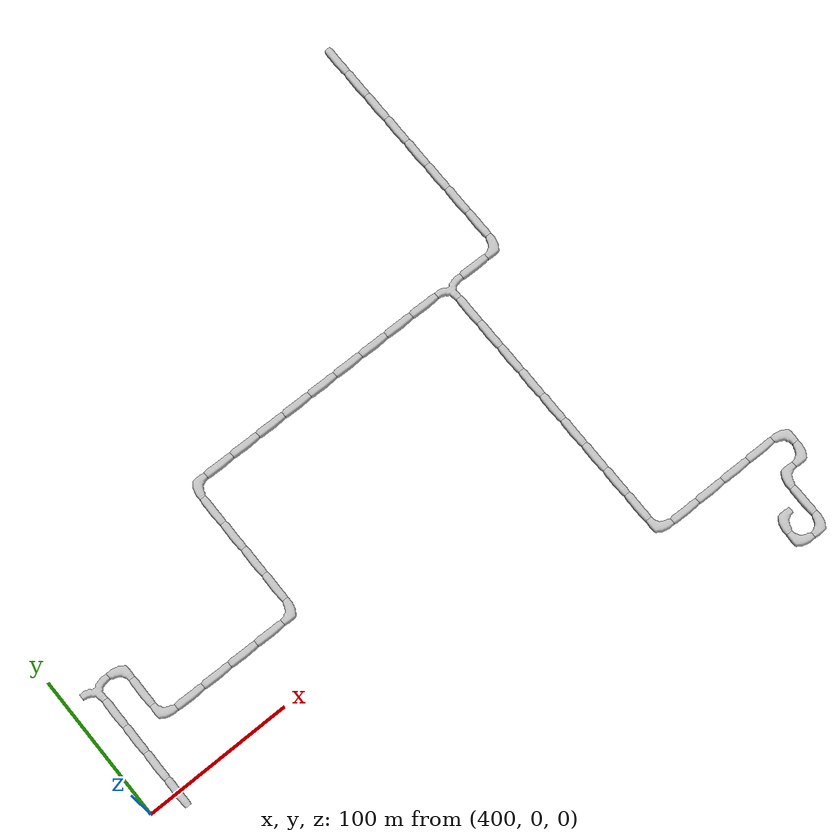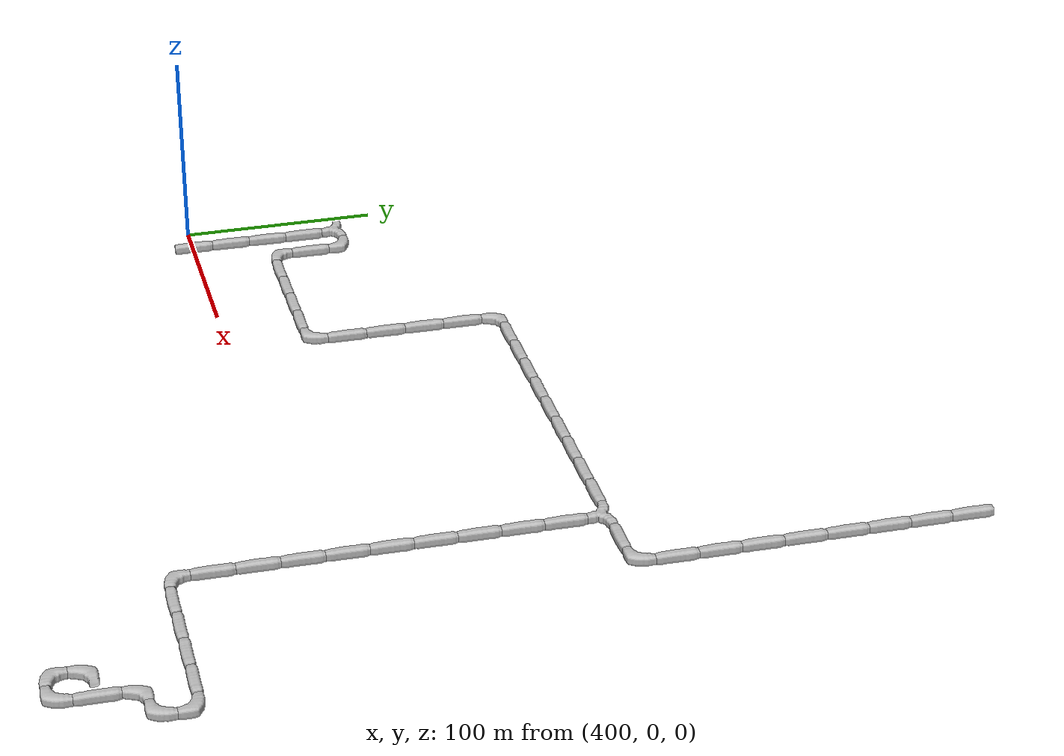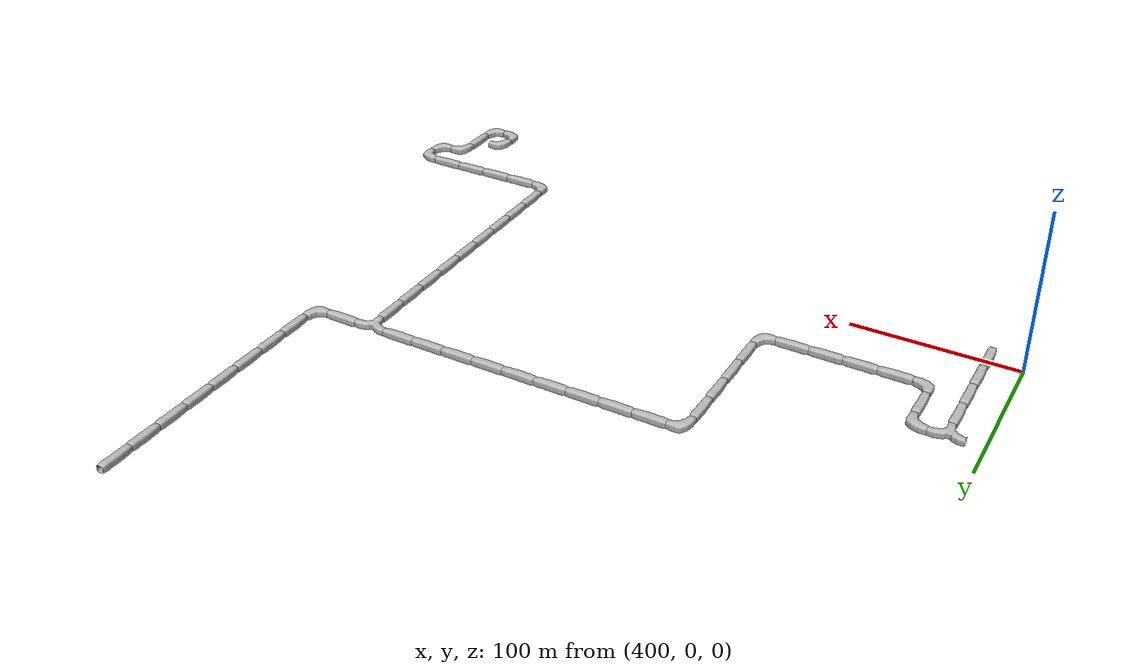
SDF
<sdf version="1.6">
 <world name="cave_32000">
  <include>
   <static>true</static>
   <name>cave_21_0</name>
   <pose>420 0 0 0 0 0.0</pose>
   <uri>model://cave_straight_20m</uri>
  </include>
  <include>
   <static>true</static>
   <name>cave_21_1</name>
   <pose>420 20 0 0 0 0.0</pose>
   <uri>model://cave_straight_20m</uri>
  </include>
  <include>
   <static>true</static>
   <name>cave_21_2</name>
   <pose>420 40 0 0 0 0.0</pose>
   <uri>model://cave_straight_20m</uri>
  </include>
  <include>
   <static>true</static>
   <name>cave_21_3</name>
   <pose>420 60 0 0 0 0.0</pose>
   <uri>model://cave_straight_20m</uri>
  </include>
  <include>
   <static>true</static>
   <name>cave_21_4</name>
   <pose>420 80 0 0 0 3.141592653589793</pose>
   <uri>model://cave_3way_20m</uri>
  </include>
  <include>
   <static>true</static>
   <name>cave_22_4</name>
   <pose>440 80 0 0 0 3.141592653589793</pose>
   <uri>model://cave_L_20m</uri>
  </include>
  <include>
   <static>true</static>
   <name>cave_22_3</name>
   <pose>440 60 0 0 0 0.0</pose>
   <uri>model://cave_straight_20m</uri>
  </include>
  <include>
   <static>true</static>
   <name>cave_22_2</name>
   <pose>440 40 0 0 0 0.0</pose>
   <uri>model://cave_L_20m</uri>
  </include>
  <include>
   <static>true</static>
   <name>cave_23_2</name>
   <pose>460 40 0 0 0 1.5707963267948966</pose>
   <uri>model://cave_straight_20m</uri>
  </include>
  <include>
   <static>true</static>
   <name>cave_24_2</name>
   <pose>480 40 0 0 0 1.5707963267948966</pose>
   <uri>model://cave_straight_20m</uri>
  </include>
  <include>
   <static>true</static>
   <name>cave_25_2</name>
   <pose>500 40 0 0 0 1.5707963267948966</pose>
   <uri>model://cave_straight_20m</uri>
  </include>
  <include>
   <static>true</static>
   <name>cave_26_2</name>
   <pose>520 40 0 0 0 1.5707963267948966</pose>
   <uri>model://cave_straight_20m</uri>
  </include>
  <include>
   <static>true</static>
   <name>cave_27_2</name>
   <pose>540 40 0 0 0 1.5707963267948966</pose>
   <uri>model://cave_L_20m</uri>
  </include>
  <include>
   <static>true</static>
   <name>cave_27_3</name>
   <pose>540 60 0 0 0 0.0</pose>
   <uri>model://cave_straight_20m</uri>
  </include>
  <include>
   <static>true</static>
   <name>cave_27_4</name>
   <pose>540 80 0 0 0 0.0</pose>
   <uri>model://cave_straight_20m</uri>
  </include>
  <include>
   <static>true</static>
   <name>cave_27_5</name>
   <pose>540 100 0 0 0 0.0</pose>
   <uri>model://cave_straight_20m</uri>
  </include>
  <include>
   <static>true</static>
   <name>cave_27_6</name>
   <pose>540 120 0 0 0 0.0</pose>
   <uri>model://cave_straight_20m</uri>
  </include>
  <include>
   <static>true</static>
   <name>cave_27_7</name>
   <pose>540 140 0 0 0 -1.5707963267948966</pose>
   <uri>model://cave_L_20m</uri>
  </include>
  <include>
   <static>true</static>
   <name>cave_28_7</name>
   <pose>560 140 0 0 0 1.5707963267948966</pose>
   <uri>model://cave_straight_20m</uri>
  </include>
  <include>
   <static>true</static>
   <name>cave_29_7</name>
   <pose>580 140 0 0 0 1.5707963267948966</pose>
   <uri>model://cave_straight_20m</uri>
  </include>
  <include>
   <static>true</static>
   <name>cave_30_7</name>
   <pose>600 140 0 0 0 1.5707963267948966</pose>
   <uri>model://cave_straight_20m</uri>
  </include>
  <include>
   <static>true</static>
   <name>cave_31_7</name>
   <pose>620 140 0 0 0 1.5707963267948966</pose>
   <uri>model://cave_straight_20m</uri>
  </include>
  <include>
   <static>true</static>
   <name>cave_32_7</name>
   <pose>640 140 0 0 0 1.5707963267948966</pose>
   <uri>model://cave_straight_20m</uri>
  </include>
  <include>
   <static>true</static>
   <name>cave_33_7</name>
   <pose>660 140 0 0 0 1.5707963267948966</pose>
   <uri>model://cave_straight_20m</uri>
  </include>
  <include>
   <static>true</static>
   <name>cave_34_7</name>
   <pose>680 140 0 0 0 1.5707963267948966</pose>
   <uri>model://cave_straight_20m</uri>
  </include>
  <include>
   <static>true</static>
   <name>cave_35_7</name>
   <pose>700 140 0 0 0 1.5707963267948966</pose>
   <uri>model://cave_straight_20m</uri>
  </include>
  <include>
   <static>true</static>
   <name>cave_36_7</name>
   <pose>720 140 0 0 0 1.5707963267948966</pose>
   <uri>model://cave_straight_20m</uri>
  </include>
  <include>
   <static>true</static>
   <name>cave_37_7</name>
   <pose>740 140 0 0 0 3.141592653589793</pose>
   <uri>model://cave_3way_20m</uri>
  </include>
  <include>
   <static>true</static>
   <name>cave_38_7</name>
   <pose>760 140 0 0 0 1.5707963267948966</pose>
   <uri>model://cave_straight_20m</uri>
  </include>
  <include>
   <static>true</static>
   <name>cave_39_7</name>
   <pose>780 140 0 0 0 1.5707963267948966</pose>
   <uri>model://cave_L_20m</uri>
  </include>
  <include>
   <static>true</static>
   <name>cave_39_8</name>
   <pose>780 160 0 0 0 0.0</pose>
   <uri>model://cave_straight_20m</uri>
  </include>
  <include>
   <static>true</static>
   <name>cave_39_9</name>
   <pose>780 180 0 0 0 0.0</pose>
   <uri>model://cave_straight_20m</uri>
  </include>
  <include>
   <static>true</static>
   <name>cave_39_10</name>
   <pose>780 200 0 0 0 0.0</pose>
   <uri>model://cave_straight_20m</uri>
  </include>
  <include>
   <static>true</static>
   <name>cave_39_11</name>
   <pose>780 220 0 0 0 0.0</pose>
   <uri>model://cave_straight_20m</uri>
  </include>
  <include>
   <static>true</static>
   <name>cave_39_12</name>
   <pose>780 240 0 0 0 0.0</pose>
   <uri>model://cave_straight_20m</uri>
  </include>
  <include>
   <static>true</static>
   <name>cave_39_13</name>
   <pose>780 260 0 0 0 0.0</pose>
   <uri>model://cave_straight_20m</uri>
  </include>
  <include>
   <static>true</static>
   <name>cave_39_14</name>
   <pose>780 280 0 0 0 0.0</pose>
   <uri>model://cave_straight_20m</uri>
  </include>
  <include>
   <static>true</static>
   <name>cave_39_15</name>
   <pose>780 300 0 0 0 0.0</pose>
   <uri>model://cave_straight_20m</uri>
  </include>
  <include>
   <static>true</static>
   <name>cave_37_6</name>
   <pose>740 120 0 0 0 0.0</pose>
   <uri>model://cave_straight_20m</uri>
  </include>
  <include>
   <static>true</static>
   <name>cave_37_5</name>
   <pose>740 100 0 0 0 0.0</pose>
   <uri>model://cave_straight_20m</uri>
  </include>
  <include>
   <static>true</static>
   <name>cave_37_4</name>
   <pose>740 80 0 0 0 0.0</pose>
   <uri>model://cave_straight_20m</uri>
  </include>
  <include>
   <static>true</static>
   <name>cave_37_3</name>
   <pose>740 60 0 0 0 0.0</pose>
   <uri>model://cave_straight_20m</uri>
  </include>
  <include>
   <static>true</static>
   <name>cave_37_2</name>
   <pose>740 40 0 0 0 0.0</pose>
   <uri>model://cave_straight_20m</uri>
  </include>
  <include>
   <static>true</static>
   <name>cave_37_1</name>
   <pose>740 20 0 0 0 0.0</pose>
   <uri>model://cave_straight_20m</uri>
  </include>
  <include>
   <static>true</static>
   <name>cave_37_0</name>
   <pose>740 0 0 0 0 0.0</pose>
   <uri>model://cave_straight_20m</uri>
  </include>
  <include>
   <static>true</static>
   <name>cave_37_-1</name>
   <pose>740 -20 0 0 0 0.0</pose>
   <uri>model://cave_straight_20m</uri>
  </include>
  <include>
   <static>true</static>
   <name>cave_37_-2</name>
   <pose>740 -40 0 0 0 0.0</pose>
   <uri>model://cave_straight_20m</uri>
  </include>
  <include>
   <static>true</static>
   <name>cave_37_-3</name>
   <pose>740 -60 0 0 0 0.0</pose>
   <uri>model://cave_L_20m</uri>
  </include>
  <include>
   <static>true</static>
   <name>cave_38_-3</name>
   <pose>760 -60 0 0 0 1.5707963267948966</pose>
   <uri>model://cave_straight_20m</uri>
  </include>
  <include>
   <static>true</static>
   <name>cave_39_-3</name>
   <pose>780 -60 0 0 0 1.5707963267948966</pose>
   <uri>model://cave_straight_20m</uri>
  </include>
  <include>
   <static>true</static>
   <name>cave_40_-3</name>
   <pose>800 -60 0 0 0 1.5707963267948966</pose>
   <uri>model://cave_straight_20m</uri>
  </include>
  <include>
   <static>true</static>
   <name>cave_41_-3</name>
   <pose>820 -60 0 0 0 1.5707963267948966</pose>
   <uri>model://cave_straight_20m</uri>
  </include>
  <include>
   <static>true</static>
   <name>cave_42_-3</name>
   <pose>840 -60 0 0 0 3.141592653589793</pose>
   <uri>model://cave_L_20m</uri>
  </include>
  <include>
   <static>true</static>
   <name>cave_42_-4</name>
   <pose>840 -80 0 0 0 1.5707963267948966</pose>
   <uri>model://cave_L_20m</uri>
  </include>
  <include>
   <static>true</static>
   <name>cave_41_-4</name>
   <pose>820 -80 0 0 0 -1.5707963267948966</pose>
   <uri>model://cave_L_20m</uri>
  </include>
  <include>
   <static>true</static>
   <name>cave_41_-5</name>
   <pose>820 -100 0 0 0 0.0</pose>
   <uri>model://cave_straight_20m</uri>
  </include>
  <include>
   <static>true</static>
   <name>cave_41_-6</name>
   <pose>820 -120 0 0 0 1.5707963267948966</pose>
   <uri>model://cave_L_20m</uri>
  </include>
  <include>
   <static>true</static>
   <name>cave_40_-6</name>
   <pose>800 -120 0 0 0 0.0</pose>
   <uri>model://cave_L_20m</uri>
  </include>
  <include>
   <static>true</static>
   <name>cave_40_-5</name>
   <pose>800 -100 0 0 0 -1.5707963267948966</pose>
   <uri>model://cave_L_20m</uri>
  </include>
 </world>
</sdf>
